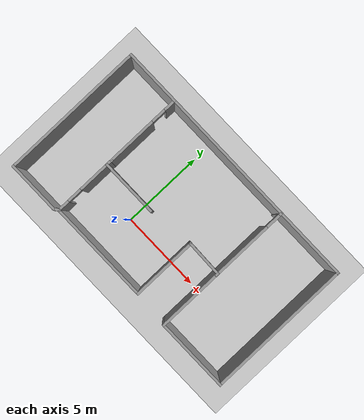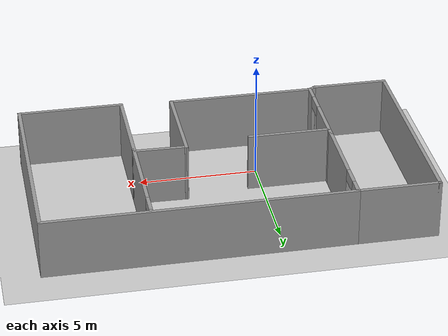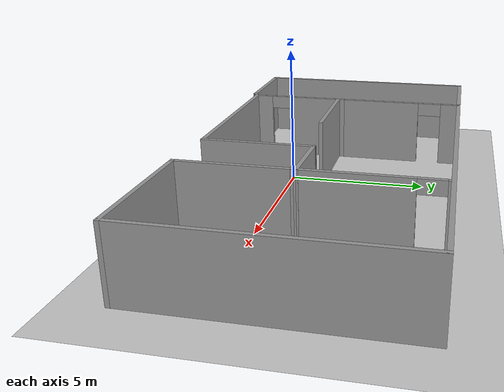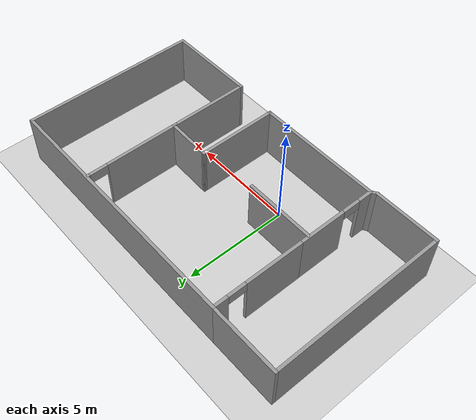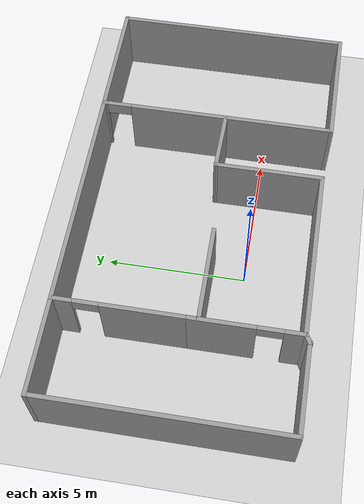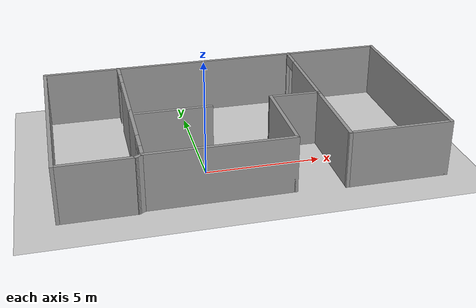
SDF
<sdf version="1.6">
 <world name="default">
  <light name="sun" type="directional">
   <pose>0 0 10 0 -0 0</pose>
   <diffuse>0.8 0.8 0.8 1</diffuse>
   <specular>0.2 0.2 0.2 1</specular>
   <attenuation>
    <range>1000</range>
    <constant>0.9</constant>
    <linear>0.01</linear>
    <quadratic>0.001</quadratic>
   </attenuation>
   <direction>-0.5 0.1 -0.9</direction>
  </light>
  <model name="ground_plane">
   <static>1</static>
   <link name="link">
    <collision name="collision">
     <geometry><plane><normal>0 0 1</normal><size>100 100</size></plane></geometry>
     <surface><friction><ode><mu>100</mu><mu2>50</mu2></ode></friction></surface>
    </collision>
    <visual name="visual">
     <cast_shadows>0</cast_shadows>
     <geometry><plane><normal>0 0 1</normal><size>100 100</size></plane></geometry>
     <material>
      <script><uri>file://media/materials/scripts/gazebo.material</uri><name>Gazebo/Grey</name></script>
     </material>
    </visual>
   </link>
  </model>
  <gravity>0 0 -9.8</gravity>
  <magnetic_field>6e-06 2.3e-05 -4.2e-05</magnetic_field>
  <atmosphere type="adiabatic"/>
  <physics name="default_physics" default="0" type="ode">
   <max_step_size>0.001</max_step_size>
   <real_time_factor>1</real_time_factor>
   <real_time_update_rate>1000</real_time_update_rate>
  </physics>
  <scene><ambient>0.4 0.4 0.4 1</ambient><background>0.7 0.7 0.7 1</background><shadows>1</shadows></scene>
  <audio><device>default</device></audio>
  <spherical_coordinates>
   <surface_model>EARTH_WGS84</surface_model>
   <latitude_deg>0</latitude_deg>
   <longitude_deg>0</longitude_deg>
   <elevation>0</elevation>
   <heading_deg>0</heading_deg>
  </spherical_coordinates>
  <model name="room2">
   <pose>1.76653 1.84826 0 0 -0 0</pose>
   <link name="Wall_10">
    <collision name="Wall_10_Collision">
     <geometry><box><size>12.75 0.15 2.5</size></box></geometry>
     <pose>0 0 1.25 0 -0 0</pose>
    </collision>
    <visual name="Wall_10_Visual">
     <pose>0 0 1.25 0 -0 0</pose>
     <geometry><box><size>12.75 0.15 2.5</size></box></geometry>
     <material>
      <script><uri>file://media/materials/scripts/gazebo.material</uri><name>Gazebo/Grey</name></script>
      <ambient>1 1 1 1</ambient>
     </material>
     <meta><layer>0</layer></meta>
    </visual>
    <pose>1.675 4.31395 0 0 -0 0</pose>
   </link>
   <link name="Wall_11">
    <collision name="Wall_11_Collision">
     <geometry><box><size>8.75 0.15 2.5</size></box></geometry>
     <pose>0 0 1.25 0 -0 0</pose>
    </collision>
    <visual name="Wall_11_Visual">
     <pose>0 0 1.25 0 -0 0</pose>
     <geometry><box><size>8.75 0.15 2.5</size></box></geometry>
     <material>
      <script><uri>file://media/materials/scripts/gazebo.material</uri><name>Gazebo/Grey</name></script>
      <ambient>1 1 1 1</ambient>
     </material>
     <meta><layer>0</layer></meta>
    </visual>
    <pose>7.975 0.013949 0 0 -0 -1.5708</pose>
   </link>
   <link name="Wall_12">
    <collision name="Wall_12_Collision">
     <geometry><box><size>4.5 0.15 2.5</size></box></geometry>
     <pose>0 0 1.25 0 -0 0</pose>
    </collision>
    <visual name="Wall_12_Visual">
     <pose>0 0 1.25 0 -0 0</pose>
     <geometry><box><size>4.5 0.15 2.5</size></box></geometry>
     <material>
      <script><uri>file://media/materials/scripts/gazebo.material</uri><name>Gazebo/Grey</name></script>
      <ambient>1 1 1 1</ambient>
     </material>
     <meta><layer>0</layer></meta>
    </visual>
    <pose>5.8 -4.28605 0 0 -0 3.14159</pose>
   </link>
   <link name="Wall_13">
    <collision name="Wall_13_Collision">
     <geometry><box><size>4 0.15 2.5</size></box></geometry>
     <pose>0 0 1.25 0 -0 0</pose>
    </collision>
    <visual name="Wall_13_Visual">
     <pose>0 0 1.25 0 -0 0</pose>
     <geometry><box><size>4 0.15 2.5</size></box></geometry>
     <material>
      <script><uri>file://media/materials/scripts/gazebo.material</uri><name>Gazebo/Grey</name></script>
      <ambient>1 1 1 1</ambient>
     </material>
     <meta><layer>0</layer></meta>
    </visual>
    <pose>3.625 -2.36105 0 0 -0 1.5708</pose>
   </link>
   <link name="Wall_14">
    <collision name="Wall_14_Collision">
     <geometry><box><size>0.15 0.15 2.5</size></box></geometry>
     <pose>0 0 1.25 0 -0 0</pose>
    </collision>
    <visual name="Wall_14_Visual">
     <pose>0 0 1.25 0 -0 0</pose>
     <geometry><box><size>0.15 0.15 2.5</size></box></geometry>
     <material>
      <script><uri>file://media/materials/scripts/gazebo.material</uri><name>Gazebo/Grey</name></script>
      <ambient>1 1 1 1</ambient>
     </material>
     <meta><layer>0</layer></meta>
    </visual>
    <pose>3.625 -0.436051 0 0 -0 0</pose>
   </link>
   <link name="Wall_15">
    <collision name="Wall_15_Collision">
     <geometry><box><size>0.25 0.15 2.5</size></box></geometry>
     <pose>0 0 1.25 0 -0 0</pose>
    </collision>
    <visual name="Wall_15_Visual">
     <pose>0 0 1.25 0 -0 0</pose>
     <geometry><box><size>0.25 0.15 2.5</size></box></geometry>
     <material>
      <script><uri>file://media/materials/scripts/gazebo.material</uri><name>Gazebo/Grey</name></script>
      <ambient>1 1 1 1</ambient>
     </material>
     <meta><layer>0</layer></meta>
    </visual>
    <pose>3.625 -0.386051 0 0 -0 1.5708</pose>
   </link>
   <link name="Wall_16">
    <collision name="Wall_16_Collision">
     <geometry><box><size>2.30058 0.15 2.5</size></box></geometry>
     <pose>0 0 1.25 0 -0 0</pose>
    </collision>
    <visual name="Wall_16_Visual">
     <pose>0 0 1.25 0 -0 0</pose>
     <geometry><box><size>2.30058 0.15 2.5</size></box></geometry>
     <material>
      <script><uri>file://media/materials/scripts/gazebo.material</uri><name>Gazebo/Grey</name></script>
      <ambient>1 1 1 1</ambient>
     </material>
     <meta><layer>0</layer></meta>
    </visual>
    <pose>2.55 -0.311051 0 0 -0 3.11834</pose>
   </link>
   <link name="Wall_18">
    <pose>3.625 1.96395 0 0 -0 1.5708</pose>
    <visual name="Wall_18_Visual_0">
     <pose>-0.537894 0 1.25 0 -0 0</pose>
     <geometry><box><size>3.67421 0.15 2.5</size></box></geometry>
     <material>
      <script><uri>file://media/materials/scripts/gazebo.material</uri><name>Gazebo/Grey</name></script>
      <ambient>1 1 1 1</ambient>
     </material>
     <meta><layer>0</layer></meta>
    </visual>
    <collision name="Wall_18_Collision_0">
     <geometry><box><size>3.67421 0.15 2.5</size></box></geometry>
     <pose>-0.537894 0 1.25 0 -0 0</pose>
    </collision>
    <visual name="Wall_18_Visual_1">
     <pose>2.28711 0 1.25 0 -0 0</pose>
     <geometry><box><size>0.175788 0.15 2.5</size></box></geometry>
     <material>
      <script><uri>file://media/materials/scripts/gazebo.material</uri><name>Gazebo/Grey</name></script>
      <ambient>1 1 1 1</ambient>
     </material>
     <meta><layer>0</layer></meta>
    </visual>
    <collision name="Wall_18_Collision_1">
     <geometry><box><size>0.175788 0.15 2.5</size></box></geometry>
     <pose>2.28711 0 1.25 0 -0 0</pose>
    </collision>
    <visual name="Wall_18_Visual_2">
     <pose>1.74921 0 2.25 0 -0 0</pose>
     <geometry><box><size>0.9 0.15 0.5</size></box></geometry>
     <material>
      <script><uri>file://media/materials/scripts/gazebo.material</uri><name>Gazebo/Grey</name></script>
      <ambient>1 1 1 1</ambient>
     </material>
     <meta><layer>0</layer></meta>
    </visual>
    <collision name="Wall_18_Collision_2">
     <geometry><box><size>0.9 0.15 0.5</size></box></geometry>
     <pose>1.74921 0 2.25 0 -0 0</pose>
    </collision>
   </link>
   <link name="Wall_20">
    <collision name="Wall_20_Collision">
     <geometry><box><size>3.5 0.15 2.5</size></box></geometry>
     <pose>0 0 1.25 0 -0 0</pose>
    </collision>
    <visual name="Wall_20_Visual">
     <pose>0 0 1.25 0 -0 0</pose>
     <geometry><box><size>3.5 0.15 2.5</size></box></geometry>
     <material>
      <script><uri>file://media/materials/scripts/gazebo.material</uri><name>Gazebo/Grey</name></script>
      <ambient>1 1 1 1</ambient>
     </material>
     <meta><layer>0</layer></meta>
    </visual>
    <pose>-2.92407 -0.622671 0 0 -0 0</pose>
   </link>
   <link name="Wall_22">
    <collision name="Wall_22_Collision">
     <geometry><box><size>3.5 0.15 2.5</size></box></geometry>
     <pose>0 0 1.25 0 -0 0</pose>
    </collision>
    <visual name="Wall_22_Visual">
     <pose>0 0 1.25 0 -0 0</pose>
     <geometry><box><size>3.5 0.15 2.5</size></box></geometry>
     <material>
      <script><uri>file://media/materials/scripts/gazebo.material</uri><name>Gazebo/Grey</name></script>
      <ambient>1 1 1 1</ambient>
     </material>
     <meta><layer>0</layer></meta>
    </visual>
    <pose>-6.3 4.31395 0 0 -0 3.14159</pose>
   </link>
   <link name="Wall_23">
    <collision name="Wall_23_Collision">
     <geometry><box><size>8.75 0.15 2.5</size></box></geometry>
     <pose>0 0 1.25 0 -0 0</pose>
    </collision>
    <visual name="Wall_23_Visual">
     <pose>0 0 1.25 0 -0 0</pose>
     <geometry><box><size>8.75 0.15 2.5</size></box></geometry>
     <material>
      <script><uri>file://media/materials/scripts/gazebo.material</uri><name>Gazebo/Grey</name></script>
      <ambient>1 1 1 1</ambient>
     </material>
     <meta><layer>0</layer></meta>
    </visual>
    <pose>-7.975 0.013949 0 0 -0 -1.5708</pose>
   </link>
   <link name="Wall_24">
    <collision name="Wall_24_Collision">
     <geometry><box><size>3.25 0.15 2.5</size></box></geometry>
     <pose>0 0 1.25 0 -0 0</pose>
    </collision>
    <visual name="Wall_24_Visual">
     <pose>0 0 1.25 0 -0 0</pose>
     <geometry><box><size>3.25 0.15 2.5</size></box></geometry>
     <material>
      <script><uri>file://media/materials/scripts/gazebo.material</uri><name>Gazebo/Grey</name></script>
      <ambient>1 1 1 1</ambient>
     </material>
     <meta><layer>0</layer></meta>
    </visual>
    <pose>-6.425 -4.28605 0 0 -0 0</pose>
   </link>
   <link name="Wall_25">
    <collision name="Wall_25_Collision">
     <geometry><box><size>0.441548 0.15 2.5</size></box></geometry>
     <pose>0 0 1.25 0 -0 0</pose>
    </collision>
    <visual name="Wall_25_Visual">
     <pose>0 0 1.25 0 -0 0</pose>
     <geometry><box><size>0.441548 0.15 2.5</size></box></geometry>
     <material>
      <script><uri>file://media/materials/scripts/gazebo.material</uri><name>Gazebo/Grey</name></script>
      <ambient>1 1 1 1</ambient>
     </material>
     <meta><layer>0</layer></meta>
    </visual>
    <pose>-4.75 -4.21105 0 0 -0 0.54042</pose>
   </link>
   <link name="Wall_5">
    <pose>-4.625 -2.21105 0 0 -0 -1.5708</pose>
    <visual name="Wall_5_Visual_0">
     <pose>-0.835481 0 1.25 0 -0 0</pose>
     <geometry><box><size>2.32904 0.15 2.5</size></box></geometry>
     <material>
      <script><uri>file://media/materials/scripts/gazebo.material</uri><name>Gazebo/Grey</name></script>
      <ambient>1 1 1 1</ambient>
     </material>
     <meta><layer>0</layer></meta>
    </visual>
    <collision name="Wall_5_Collision_0">
     <geometry><box><size>2.32904 0.15 2.5</size></box></geometry>
     <pose>-0.835481 0 1.25 0 -0 0</pose>
    </collision>
    <visual name="Wall_5_Visual_1">
     <pose>1.61452 0 1.25 0 -0 0</pose>
     <geometry><box><size>0.770962 0.15 2.5</size></box></geometry>
     <material>
      <script><uri>file://media/materials/scripts/gazebo.material</uri><name>Gazebo/Grey</name></script>
      <ambient>1 1 1 1</ambient>
     </material>
     <meta><layer>0</layer></meta>
    </visual>
    <collision name="Wall_5_Collision_1">
     <geometry><box><size>0.770962 0.15 2.5</size></box></geometry>
     <pose>1.61452 0 1.25 0 -0 0</pose>
    </collision>
    <visual name="Wall_5_Visual_2">
     <pose>0.779038 0 2.25 0 -0 0</pose>
     <geometry><box><size>0.9 0.15 0.5</size></box></geometry>
     <material>
      <script><uri>file://media/materials/scripts/gazebo.material</uri><name>Gazebo/Grey</name></script>
      <ambient>1 1 1 1</ambient>
     </material>
     <meta><layer>0</layer></meta>
    </visual>
    <collision name="Wall_5_Collision_2">
     <geometry><box><size>0.9 0.15 0.5</size></box></geometry>
     <pose>0.779038 0 2.25 0 -0 0</pose>
    </collision>
   </link>
   <link name="Wall_6">
    <collision name="Wall_6_Collision">
     <geometry><box><size>6.25 0.15 2.5</size></box></geometry>
     <pose>0 0 1.25 0 -0 0</pose>
    </collision>
    <visual name="Wall_6_Visual">
     <pose>0 0 1.25 0 -0 0</pose>
     <geometry><box><size>6.25 0.15 2.5</size></box></geometry>
     <material>
      <script><uri>file://media/materials/scripts/gazebo.material</uri><name>Gazebo/Grey</name></script>
      <ambient>1 1 1 1</ambient>
     </material>
     <meta><layer>0</layer></meta>
    </visual>
    <pose>-1.575 -4.13605 0 0 -0 0</pose>
   </link>
   <link name="Wall_7">
    <collision name="Wall_7_Collision">
     <geometry><box><size>4 0.15 2.5</size></box></geometry>
     <pose>0 0 1.25 0 -0 0</pose>
    </collision>
    <visual name="Wall_7_Visual">
     <pose>0 0 1.25 0 -0 0</pose>
     <geometry><box><size>4 0.15 2.5</size></box></geometry>
     <material>
      <script><uri>file://media/materials/scripts/gazebo.material</uri><name>Gazebo/Grey</name></script>
      <ambient>1 1 1 1</ambient>
     </material>
     <meta><layer>0</layer></meta>
    </visual>
    <pose>1.475 -2.21105 0 0 -0 1.5708</pose>
   </link>
   <link name="Wall_9">
    <pose>-4.625 2.01395 0 0 -0 1.5708</pose>
    <visual name="Wall_9_Visual_0">
     <pose>-0.842196 0 1.25 0 -0 0</pose>
     <geometry><box><size>3.06561 0.15 2.5</size></box></geometry>
     <material>
      <script><uri>file://media/materials/scripts/gazebo.material</uri><name>Gazebo/Grey</name></script>
      <ambient>1 1 1 1</ambient>
     </material>
     <meta><layer>0</layer></meta>
    </visual>
    <collision name="Wall_9_Collision_0">
     <geometry><box><size>3.06561 0.15 2.5</size></box></geometry>
     <pose>-0.842196 0 1.25 0 -0 0</pose>
    </collision>
    <visual name="Wall_9_Visual_1">
     <pose>1.9828 0 1.25 0 -0 0</pose>
     <geometry><box><size>0.784393 0.15 2.5</size></box></geometry>
     <material>
      <script><uri>file://media/materials/scripts/gazebo.material</uri><name>Gazebo/Grey</name></script>
      <ambient>1 1 1 1</ambient>
     </material>
     <meta><layer>0</layer></meta>
    </visual>
    <collision name="Wall_9_Collision_1">
     <geometry><box><size>0.784393 0.15 2.5</size></box></geometry>
     <pose>1.9828 0 1.25 0 -0 0</pose>
    </collision>
    <visual name="Wall_9_Visual_2">
     <pose>1.14061 0 2.25 0 -0 0</pose>
     <geometry><box><size>0.9 0.15 0.5</size></box></geometry>
     <material>
      <script><uri>file://media/materials/scripts/gazebo.material</uri><name>Gazebo/Grey</name></script>
      <ambient>1 1 1 1</ambient>
     </material>
     <meta><layer>0</layer></meta>
    </visual>
    <collision name="Wall_9_Collision_2">
     <geometry><box><size>0.9 0.15 0.5</size></box></geometry>
     <pose>1.14061 0 2.25 0 -0 0</pose>
    </collision>
   </link>
   <static>1</static>
  </model>
 </world>
</sdf>
